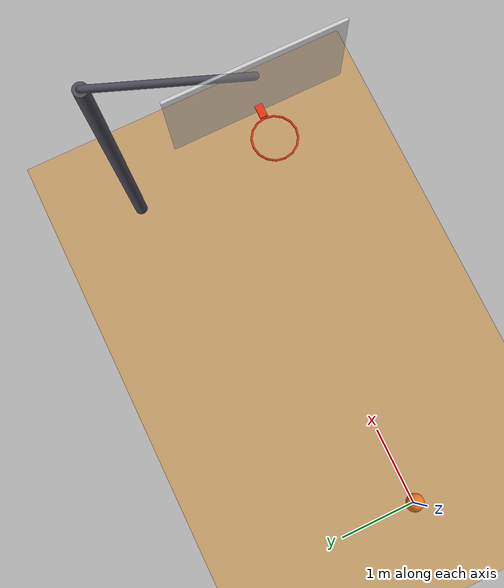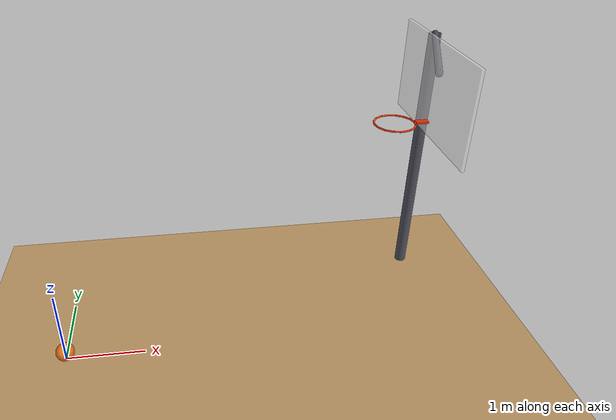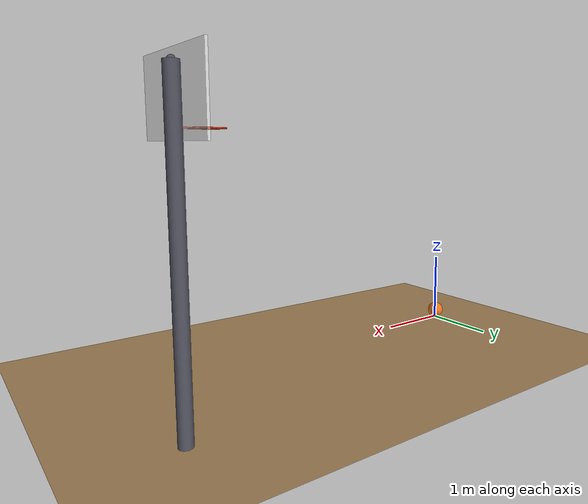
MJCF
<mujoco model="basketball_shot">
  <option timestep="0.002" gravity="0 0 -9.81"/>

  <visual>
    <global offwidth="1280" offheight="720"/>
  </visual>

  <worldbody>
    <light name="sun" pos="2 -3 8" dir="0 0.3 -1" directional="true"/>
    <geom name="floor" type="plane" size="20 20 0.1" rgba="0.75 0.6 0.4 1" friction="0.8 0.005 0.03" solref="0.01 0.25"/>

    <body name="ball" pos="0 0 0.121">
      <freejoint name="ball_free"/>
      <geom name="ball" type="sphere" size="0.12" mass="0.62" rgba="0.9 0.45 0.1 1" condim="6" friction="0.8 0.005 0.03" solref="0.01 0.25"/>
    </body>

    <body name="hoop" pos="4 0 3.05">
      <geom name="rim00" type="capsule" size="0.01" fromto="0.2286 0 0 0.2112 0.0875 0" rgba="0.9 0.2 0.05 1"/>
      <geom name="rim01" type="capsule" size="0.01" fromto="0.2112 0.0875 0 0.1616 0.1616 0" rgba="0.9 0.2 0.05 1"/>
      <geom name="rim02" type="capsule" size="0.01" fromto="0.1616 0.1616 0 0.0875 0.2112 0" rgba="0.9 0.2 0.05 1"/>
      <geom name="rim03" type="capsule" size="0.01" fromto="0.0875 0.2112 0 0 0.2286 0" rgba="0.9 0.2 0.05 1"/>
      <geom name="rim04" type="capsule" size="0.01" fromto="0 0.2286 0 -0.0875 0.2112 0" rgba="0.9 0.2 0.05 1"/>
      <geom name="rim05" type="capsule" size="0.01" fromto="-0.0875 0.2112 0 -0.1616 0.1616 0" rgba="0.9 0.2 0.05 1"/>
      <geom name="rim06" type="capsule" size="0.01" fromto="-0.1616 0.1616 0 -0.2112 0.0875 0" rgba="0.9 0.2 0.05 1"/>
      <geom name="rim07" type="capsule" size="0.01" fromto="-0.2112 0.0875 0 -0.2286 0 0" rgba="0.9 0.2 0.05 1"/>
      <geom name="rim08" type="capsule" size="0.01" fromto="-0.2286 0 0 -0.2112 -0.0875 0" rgba="0.9 0.2 0.05 1"/>
      <geom name="rim09" type="capsule" size="0.01" fromto="-0.2112 -0.0875 0 -0.1616 -0.1616 0" rgba="0.9 0.2 0.05 1"/>
      <geom name="rim10" type="capsule" size="0.01" fromto="-0.1616 -0.1616 0 -0.0875 -0.2112 0" rgba="0.9 0.2 0.05 1"/>
      <geom name="rim11" type="capsule" size="0.01" fromto="-0.0875 -0.2112 0 0 -0.2286 0" rgba="0.9 0.2 0.05 1"/>
      <geom name="rim12" type="capsule" size="0.01" fromto="0 -0.2286 0 0.0875 -0.2112 0" rgba="0.9 0.2 0.05 1"/>
      <geom name="rim13" type="capsule" size="0.01" fromto="0.0875 -0.2112 0 0.1616 -0.1616 0" rgba="0.9 0.2 0.05 1"/>
      <geom name="rim14" type="capsule" size="0.01" fromto="0.1616 -0.1616 0 0.2112 -0.0875 0" rgba="0.9 0.2 0.05 1"/>
      <geom name="rim15" type="capsule" size="0.01" fromto="0.2112 -0.0875 0 0.2286 0 0" rgba="0.9 0.2 0.05 1"/>
      <geom name="neck" type="box" size="0.07 0.04 0.01" pos="0.31 0 0" rgba="0.9 0.2 0.05 1"/>
    </body>

    <body name="support" pos="0 0 0">
      <geom name="backboard" type="box" size="0.015 0.915 0.525" pos="4.395 0 3.425" rgba="0.95 0.95 0.95 0.6"/>
      <geom name="arm" type="capsule" size="0.04" fromto="4.42 0 3.6 5.0 1.5 3.6" rgba="0.3 0.3 0.35 1"/>
      <geom name="pole" type="cylinder" size="0.08" fromto="5.0 1.5 0 5.0 1.5 3.6" rgba="0.3 0.3 0.35 1"/>
    </body>
  </worldbody>

  <keyframe>
    <key name="start" qpos="0 0 0.121 1 0 0 0" qvel="2.865 0 8.947 0 0 0"/>
  </keyframe>
</mujoco>
